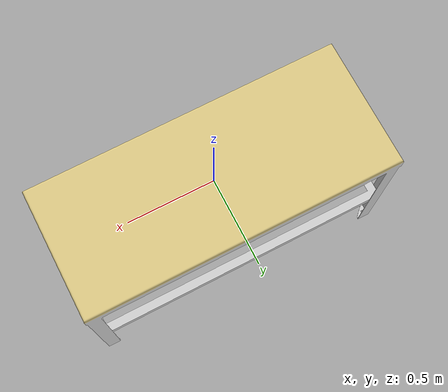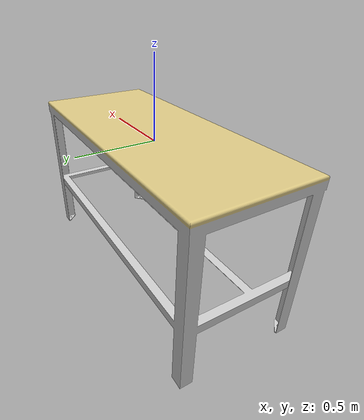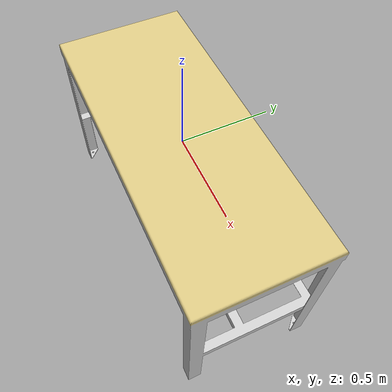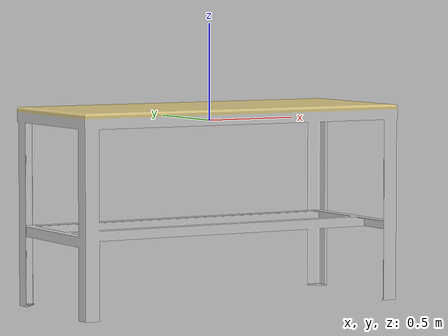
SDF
<?xml version="1.0" ?>
<sdf version="1.5">
  <model name="bench">
    <link name="link">
      <pose>0 0 0 0 0 0</pose>
      <inertial>
        <mass>20.0</mass>
        <inertia>
          <ixx>2.43</ixx>
          <ixy>0</ixy>
          <ixz>0</ixz>
          <iyy>1.10</iyy>
          <iyz>0</iyz>
          <izz>3.47</izz>
        </inertia>
      </inertial>
      <collision name="collision">
        <pose>0 0 0.05 0 0 0</pose>
        <geometry>
          <mesh>
            <uri>model://bench/meshes/bench.dae</uri>
            <scale>1 1 1</scale>
          </mesh>
        </geometry>
      </collision>
      <visual name="visual">
        <pose>0 0 0.05 0 0 0</pose>
        <geometry>
          <mesh>
            <uri>model://bench/meshes/bench.dae</uri>
            <scale>1 1 1</scale>
          </mesh>
        </geometry>
      </visual>
    </link>
  </model>
</sdf>
